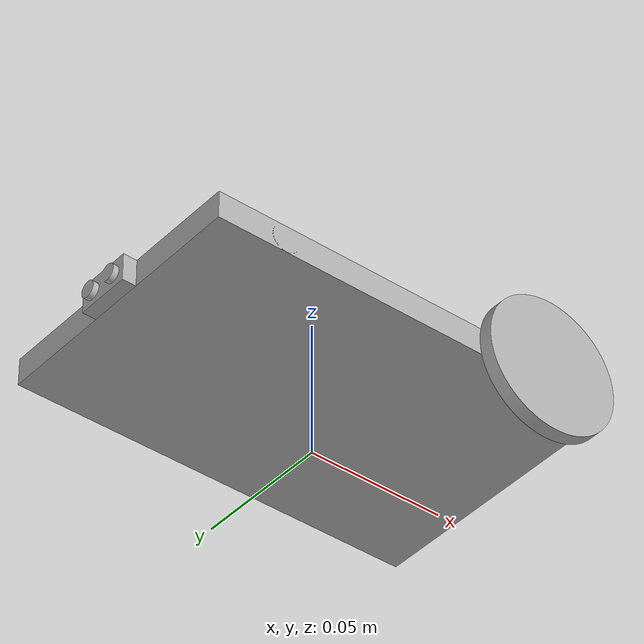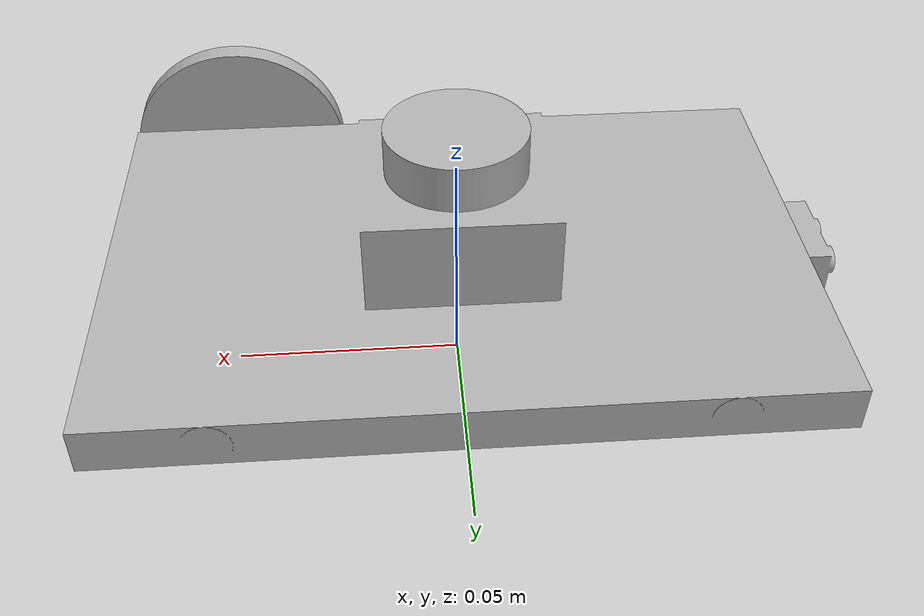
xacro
<?xml version="1.0" ?>
<robot name="robot_gazebo_test" xmlns:xacro="http://www.ros.org/wiki/xacro">

<xacro:include filename="$(find robot_gazebo_test_description)/urdf/materials.xacro" />
<xacro:include filename="$(find robot_gazebo_test_description)/urdf/robot_gazebo_test.trans" />
<xacro:include filename="$(find robot_gazebo_test_description)/urdf/robot_gazebo_test.gazebo" />
<link name="base_link">
  <inertial>
    <origin xyz="-1.2490902973308486e-17 0.0 0.0276369074676303" rpy="0 0 0"/>
    <mass value="1.4289466150233066"/>
    <inertia ixx="0.00108" iyy="0.002307" izz="0.003257" ixy="-0.0" iyz="-0.0" ixz="-0.0"/>
  </inertial>
  <visual>
    <origin xyz="0 0 0" rpy="0 0 0"/>
    <geometry>
      <mesh filename="file://$(find robot_gazebo_test_description)/meshes/base_link.stl" scale="0.001 0.001 0.001"/>
    </geometry>
    <material name="silver"/>
  </visual>
  <collision>
    <origin xyz="0 0 0" rpy="0 0 0"/>
    <geometry>
      <mesh filename="file://$(find robot_gazebo_test_description)/meshes/base_link.stl" scale="0.001 0.001 0.001"/>
    </geometry>
  </collision>
</link>

<link name="wheel_back_left_1">
  <inertial>
    <origin xyz="-1.3877787807814457e-17 -0.0025000000000000022 -6.938893903907228e-18" rpy="0 0 0"/>
    <mass value="0.0770671947833746"/>
    <inertia ixx="1.2e-05" iyy="2.4e-05" izz="1.2e-05" ixy="0.0" iyz="0.0" ixz="-0.0"/>
  </inertial>
  <visual>
    <origin xyz="-0.05 0.0501 -0.025" rpy="0 0 0"/>
    <geometry>
      <mesh filename="file://$(find robot_gazebo_test_description)/meshes/wheel_back_left_1.stl" scale="0.001 0.001 0.001"/>
    </geometry>
    <material name="silver"/>
  </visual>
  <collision>
    <origin xyz="-0.05 0.0501 -0.025" rpy="0 0 0"/>
    <geometry>
      <mesh filename="file://$(find robot_gazebo_test_description)/meshes/wheel_back_left_1.stl" scale="0.001 0.001 0.001"/>
    </geometry>
  </collision>
</link>

<link name="wheel_back_right_1">
  <inertial>
    <origin xyz="-1.3877787807814457e-17 0.0025000000000000022 -6.938893903907228e-18" rpy="0 0 0"/>
    <mass value="0.0770671947833746"/>
    <inertia ixx="1.2e-05" iyy="2.4e-05" izz="1.2e-05" ixy="-0.0" iyz="0.0" ixz="-0.0"/>
  </inertial>
  <visual>
    <origin xyz="-0.05 -0.0501 -0.025" rpy="0 0 0"/>
    <geometry>
      <mesh filename="file://$(find robot_gazebo_test_description)/meshes/wheel_back_right_1.stl" scale="0.001 0.001 0.001"/>
    </geometry>
    <material name="silver"/>
  </visual>
  <collision>
    <origin xyz="-0.05 -0.0501 -0.025" rpy="0 0 0"/>
    <geometry>
      <mesh filename="file://$(find robot_gazebo_test_description)/meshes/wheel_back_right_1.stl" scale="0.001 0.001 0.001"/>
    </geometry>
  </collision>
</link>

<link name="wheel_front_right_1">
  <inertial>
    <origin xyz="-6.938893903907228e-18 0.0025000000000000022 0.0" rpy="0 0 0"/>
    <mass value="0.0770671947833746"/>
    <inertia ixx="1.2e-05" iyy="2.4e-05" izz="1.2e-05" ixy="0.0" iyz="0.0" ixz="-0.0"/>
  </inertial>
  <visual>
    <origin xyz="0.05 -0.0501 -0.025" rpy="0 0 0"/>
    <geometry>
      <mesh filename="file://$(find robot_gazebo_test_description)/meshes/wheel_front_right_1.stl" scale="0.001 0.001 0.001"/>
    </geometry>
    <material name="silver"/>
  </visual>
  <collision>
    <origin xyz="0.05 -0.0501 -0.025" rpy="0 0 0"/>
    <geometry>
      <mesh filename="file://$(find robot_gazebo_test_description)/meshes/wheel_front_right_1.stl" scale="0.001 0.001 0.001"/>
    </geometry>
  </collision>
</link>

<link name="wheel_front_left_1">
  <inertial>
    <origin xyz="0.0 -0.0025000000000000022 0.0" rpy="0 0 0"/>
    <mass value="0.0770671947833746"/>
    <inertia ixx="1.2e-05" iyy="2.4e-05" izz="1.2e-05" ixy="0.0" iyz="-0.0" ixz="0.0"/>
  </inertial>
  <visual>
    <origin xyz="0.05 0.0501 -0.025" rpy="0 0 0"/>
    <geometry>
      <mesh filename="file://$(find robot_gazebo_test_description)/meshes/wheel_front_left_1.stl" scale="0.001 0.001 0.001"/>
    </geometry>
    <material name="silver"/>
  </visual>
  <collision>
    <origin xyz="0.05 0.0501 -0.025" rpy="0 0 0"/>
    <geometry>
      <mesh filename="file://$(find robot_gazebo_test_description)/meshes/wheel_front_left_1.stl" scale="0.001 0.001 0.001"/>
    </geometry>
  </collision>
</link>

<link name="lidar_1">
  <inertial>
    <origin xyz="1.7769811620325714e-18 1.7769811620325714e-18 0.0050000000000000044" rpy="0 0 0"/>
    <mass value="0.0554883802440297"/>
    <inertia ixx="4e-06" iyy="4e-06" izz="6e-06" ixy="-0.0" iyz="-0.0" ixz="0.0"/>
  </inertial>
  <visual>
    <origin xyz="-0.0 -0.0 -0.05" rpy="0 0 0"/>
    <geometry>
      <mesh filename="file://$(find robot_gazebo_test_description)/meshes/lidar_1.stl" scale="0.001 0.001 0.001"/>
    </geometry>
    <material name="silver"/>
  </visual>
  <collision>
    <origin xyz="-0.0 -0.0 -0.05" rpy="0 0 0"/>
    <geometry>
      <mesh filename="file://$(find robot_gazebo_test_description)/meshes/lidar_1.stl" scale="0.001 0.001 0.001"/>
    </geometry>
  </collision>
</link>

<link name="ultrasound_1">
  <inertial>
    <origin xyz="-0.0028556209078179212 6.374696216593059e-14 3.7851173584346753e-11" rpy="0 0 0"/>
    <mass value="0.008737814110363359"/>
    <inertia ixx="0.0" iyy="0.0" izz="0.0" ixy="0.0" iyz="0.0" ixz="0.0"/>
  </inertial>
  <visual>
    <origin xyz="0.075 -0.0 -0.025" rpy="0 0 0"/>
    <geometry>
      <mesh filename="file://$(find robot_gazebo_test_description)/meshes/ultrasound_1.stl" scale="0.001 0.001 0.001"/>
    </geometry>
    <material name="silver"/>
  </visual>
  <collision>
    <origin xyz="0.075 -0.0 -0.025" rpy="0 0 0"/>
    <geometry>
      <mesh filename="file://$(find robot_gazebo_test_description)/meshes/ultrasound_1.stl" scale="0.001 0.001 0.001"/>
    </geometry>
  </collision>
</link>

<joint name="rev_back_left" type="continuous">
  <origin xyz="0.05 -0.0501 0.025" rpy="0 0 0"/>
  <parent link="base_link"/>
  <child link="wheel_back_left_1"/>
  <axis xyz="0.0 -1.0 0.0"/>
</joint>

<joint name="rev_back_right" type="continuous">
  <origin xyz="0.05 0.0501 0.025" rpy="0 0 0"/>
  <parent link="base_link"/>
  <child link="wheel_back_right_1"/>
  <axis xyz="0.0 1.0 0.0"/>
</joint>

<joint name="rev_front_right" type="continuous">
  <origin xyz="-0.05 0.0501 0.025" rpy="0 0 0"/>
  <parent link="base_link"/>
  <child link="wheel_front_right_1"/>
  <axis xyz="0.0 1.0 0.0"/>
</joint>

<joint name="rev_front_left" type="continuous">
  <origin xyz="-0.05 -0.0501 0.025" rpy="0 0 0"/>
  <parent link="base_link"/>
  <child link="wheel_front_left_1"/>
  <axis xyz="0.0 -1.0 0.0"/>
</joint>

<joint name="lidar" type="continuous">
  <origin xyz="0.0 0.0 0.05" rpy="0 0 0"/>
  <parent link="base_link"/>
  <child link="lidar_1"/>
  <axis xyz="0.0 0.0 1.0"/>
</joint>

<joint name="static" type="fixed">
  <origin xyz="-0.075 0.0 0.025" rpy="0 0 0"/>
  <parent link="base_link"/>
  <child link="ultrasound_1"/>
</joint>

</robot>

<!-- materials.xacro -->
<robot name="robot_gazebo_test" xmlns:xacro="http://www.ros.org/wiki/xacro">

<material name="silver">
  <color rgba="0.700 0.700 0.700 1.000"/>
</material>

</robot>

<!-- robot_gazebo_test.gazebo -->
<robot name="robot_gazebo_test" xmlns:xacro="http://www.ros.org/wiki/xacro">

<xacro:property name="body_color" value="Gazebo/Silver"/>

<gazebo>
  <plugin name="control" filename="libgazebo_ros_control.so"/>
</gazebo>
<gazebo reference="base_link">
  <material>${body_color}</material>
  <mu1>0.2</mu1>
  <mu2>0.2</mu2>
  <self_collide>true</self_collide>
  <gravity>true</gravity>
</gazebo>

<gazebo reference="wheel_back_left_1">
  <material>${body_color}</material>
  <mu1>0.2</mu1>
  <mu2>0.2</mu2>
  <self_collide>true</self_collide>
</gazebo>

<gazebo reference="wheel_back_right_1">
  <material>${body_color}</material>
  <mu1>0.2</mu1>
  <mu2>0.2</mu2>
  <self_collide>true</self_collide>
</gazebo>

<gazebo reference="wheel_front_right_1">
  <material>${body_color}</material>
  <mu1>0.2</mu1>
  <mu2>0.2</mu2>
  <self_collide>true</self_collide>
</gazebo>

<gazebo reference="wheel_front_left_1">
  <material>${body_color}</material>
  <mu1>0.2</mu1>
  <mu2>0.2</mu2>
  <self_collide>true</self_collide>
</gazebo>

<!-- front diff drive status -->
<gazebo>
  <plugin name="diff_front_drive" filename="libgazebo_ros_diff_drive.so">
      <ros>
          <remapping>cmd_vel:=cmd_vel</remapping>
          <namespace>/front</namespace>
          <remapping>odom:=odom</remapping>
      </ros>
      <left_joint>rev_front_left</left_joint>
      <right_joint>rev_front_right</right_joint>
      <wheel_separation>0.4</wheel_separation>
      <wheel_diameter>0.15</wheel_diameter>
      <max_wheel_torque>20</max_wheel_torque>
      <max_wheel_acceleration>1.0</max_wheel_acceleration>
      <publish_odom>true</publish_odom>
      <publish_odom_tf>false</publish_odom_tf>
      <publish_wheel_tf>true</publish_wheel_tf>
      <update_rate>30</update_rate>

      <odometry_topic>odom</odometry_topic>
      <odometry_frame>odom</odometry_frame>
      <base_frame_id>base_footprint</base_frame_id>
      <robot_base_frame>base_link</robot_base_frame>
      <command_topic>cmd_vel</command_topic>
  </plugin>
</gazebo>
<!-- front diff drive status -->
<gazebo>
  <plugin name="diff_back_drive" filename="libgazebo_ros_diff_drive.so">
      <ros>
          <remapping>cmd_vel:=cmd_vel</remapping>
          <namespace>/back</namespace>
          <remapping>odom:=odom</remapping>
      </ros>
      <left_joint>rev_back_left</left_joint>
      <right_joint>rev_back_right</right_joint>
      <wheel_separation>0.4</wheel_separation>
      <wheel_diameter>0.15</wheel_diameter>
      <max_wheel_torque>20</max_wheel_torque>
      <max_wheel_acceleration>1.0</max_wheel_acceleration>
      <publish_odom>true</publish_odom>
      <publish_odom_tf>false</publish_odom_tf>
      <publish_wheel_tf>true</publish_wheel_tf>
      <update_rate>30</update_rate>

      <odometry_topic>odom</odometry_topic>
      <odometry_frame>odom</odometry_frame>
      <base_frame_id>base_footprint</base_frame_id>
      <robot_base_frame>base_link</robot_base_frame>
      <command_topic>cmd_vel</command_topic>
  </plugin>
</gazebo>

<!-- lidar plugin -->
<gazebo reference="lidar_1">
    <sensor name="gazebo_lidar" type="ray">
        <always_on>true</always_on>
        <visualize>true</visualize>
        <update_rate>1</update_rate>
        <plugin filename="libgazebo_ros_ray_sensor.so" name="gazebo_lidar">
            <ros>
                <remapping>~/out:=scan</remapping>
            </ros>
            <output_type>sensor_msgs/LaserScan</output_type>
            <frame_name>lidar_1</frame_name>
        </plugin>
        <ray>
            <scan>
                <horizontal>
                    <samples>360</samples>
                    <resolution>1.000000</resolution>
                    <min_angle>0.000000</min_angle>
                    <max_angle>3.140000</max_angle>
                </horizontal>
            </scan>
            <range>
                <min>0.150</min>
                <max>6.0</max>
                <resolution>0.015</resolution>
            </range>
            <noise>
                <type>gaussian</type>
                <mean>0.0</mean>
                <stddev>0.01</stddev>
            </noise>
        </ray>
  </sensor>
    <material>Gazebo/DarkGrey</material>
</gazebo>

<gazebo reference="ultrasound_1">
  <material>${body_color}</material>
  <mu1>0.2</mu1>
  <mu2>0.2</mu2>
  <self_collide>true</self_collide>
</gazebo>

</robot>
